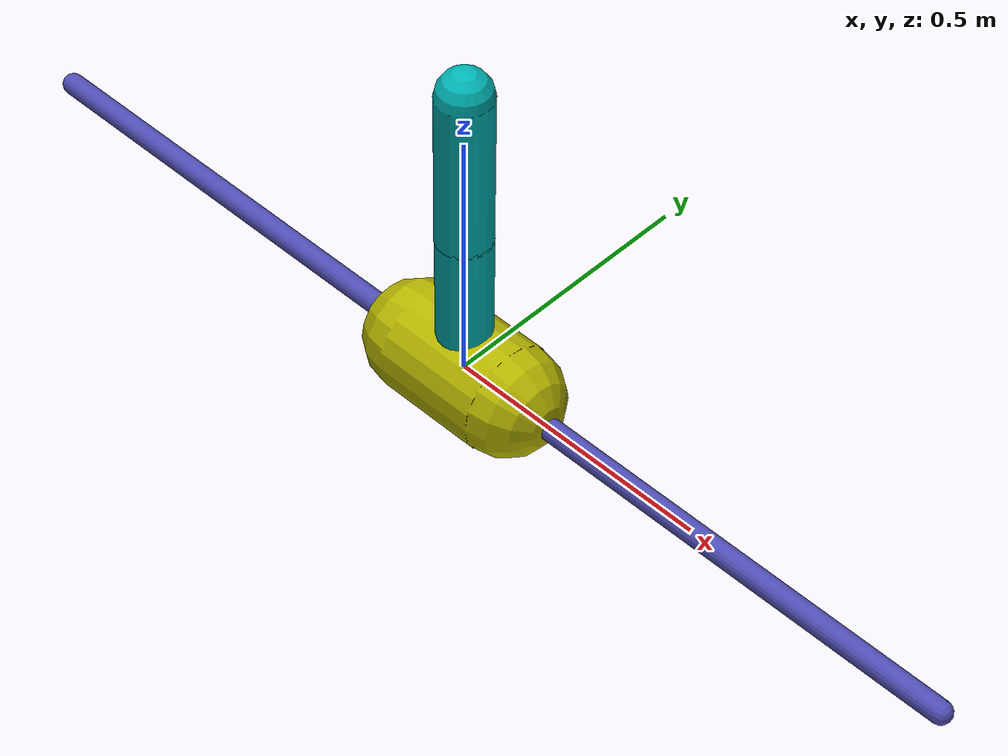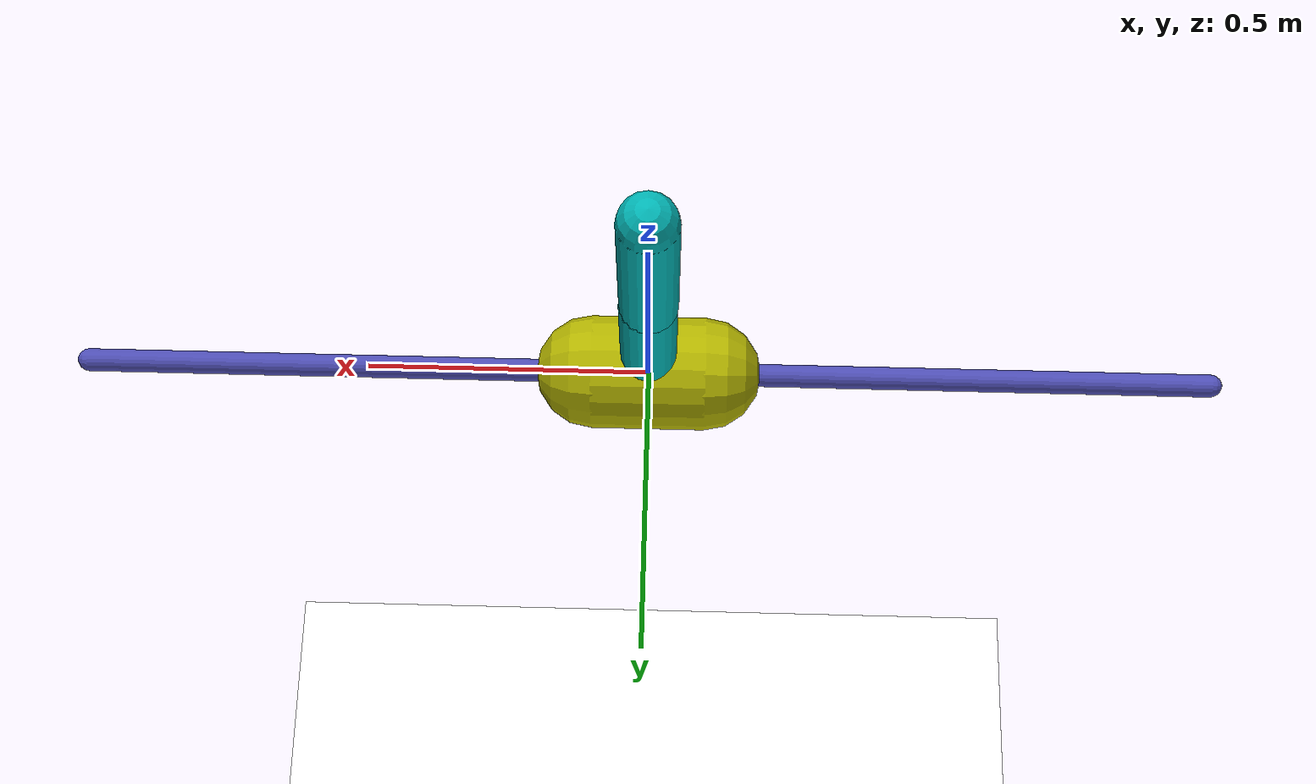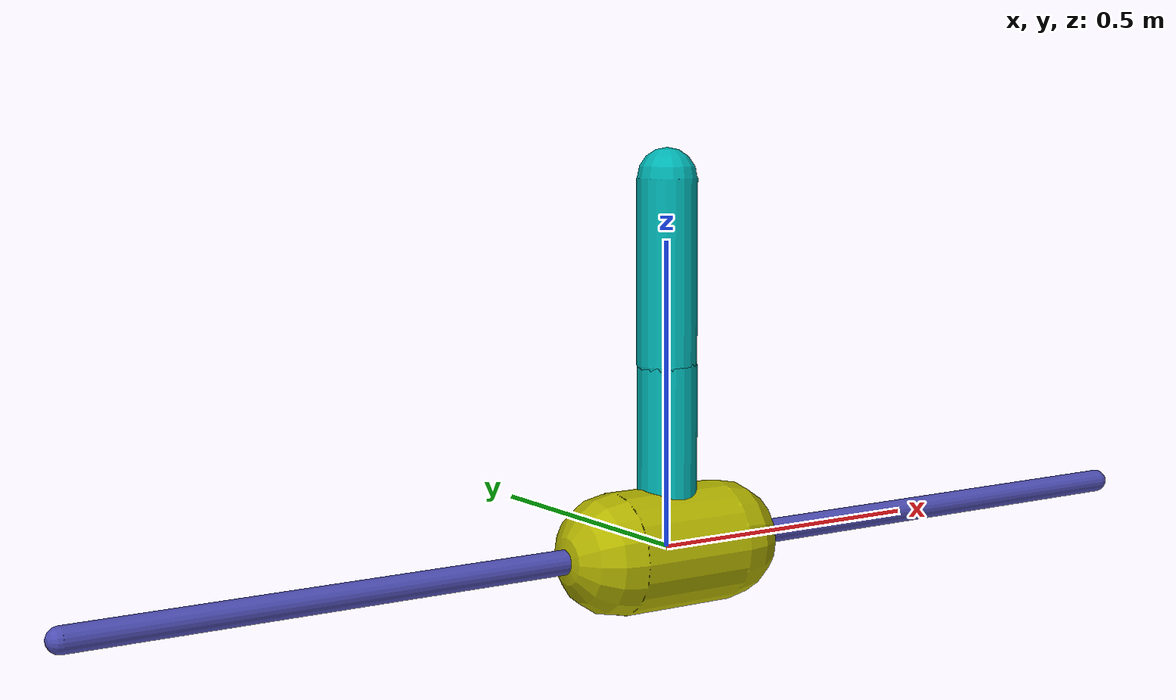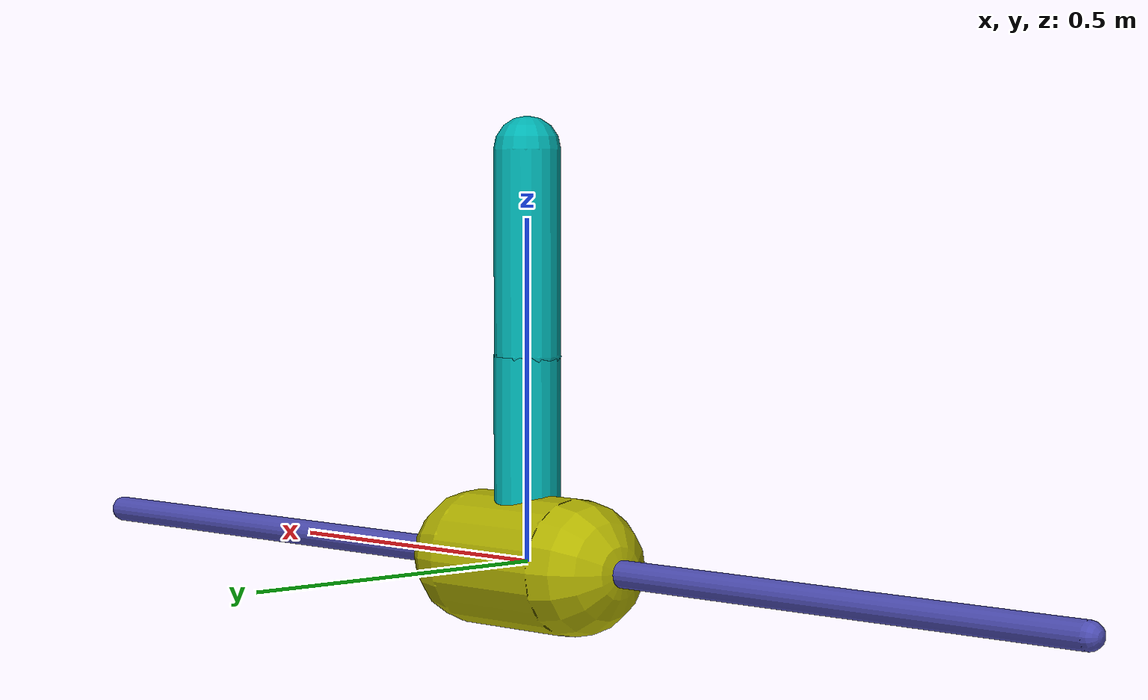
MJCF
<mujoco model="inverted double pendulum">
  <compiler coordinate="local" inertiafromgeom="true"/>
  <custom>
    <numeric data="2" name="frame_skip"/>
  </custom>
  <default>
    <joint armature="0" damping="1" limited="true"/>
    <geom contype="0" friction="1 0.1 0.1" rgba="0.7 0.7 0 1"/>
  </default>
  <option gravity="0 0 -9.80665" integrator="RK4" timestep="0.001"/>
  <size nstack="3000"/>
  <worldbody>
    <geom name="floor" pos="0 0 -3.0" rgba="1 1 1 1" size="40 40 40" type="plane"/>
    <geom name="rail" pos="0 0 0" quat="0.707 0 0.707 0" rgba="0.3 0.3 0.7 1" size="0.02 1" type="capsule"/>
    <body name="cart" pos="0 0 0">
      <joint axis="1 0 0" limited="true" margin="0.01" name="slider" pos="0 0 0" range="-1 1" frictionloss="0.01" damping="0" type="slide"/>
      <geom name="cart" pos="0 0 0" quat="0.707 0 0.707 0" size="0.1 0.1" type="capsule"/>
      <body name="pole" pos="0 0 0">
        <joint axis="0 1 0" name="hinge" pos="0 0 0" limited="false" frictionloss="0.0001" damping="0" type="hinge"/>
        <geom fromto="0 0 0 0.001 0 0.3" name="cpole" rgba="0 0.7 0.7 1" size="0.049 0.3" density="1500" type="capsule"/>
        <body name="pole2" pos="0 0 0.3">
          <joint axis="0 1 0" name="hinge2" pos="0 0 0" limited="false" frictionloss="0.0001" damping="0" type="hinge"/>
          <geom fromto="0 0 0 0.001 0 0.3" name="cpole2" rgba="0 0.7 0.7 1" size="0.049 0.3" density="1000" type="capsule"/>
          <site name="tip" pos="0 0 0.3" size="0.01 0.01"/>
        </body>
      </body>
    </body>
  </worldbody>
  <actuator>
    <motor ctrllimited="true" ctrlrange="-3 3" gear="100" joint="slider" name="slide"/>
  </actuator>
</mujoco>
